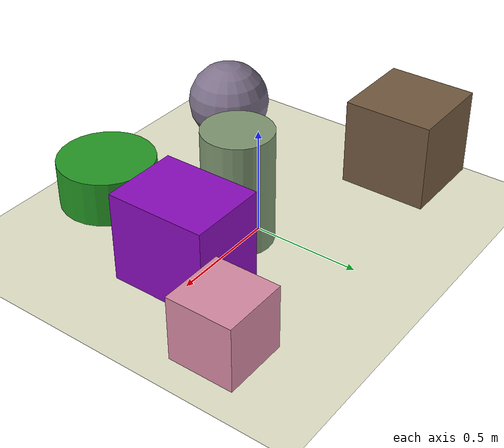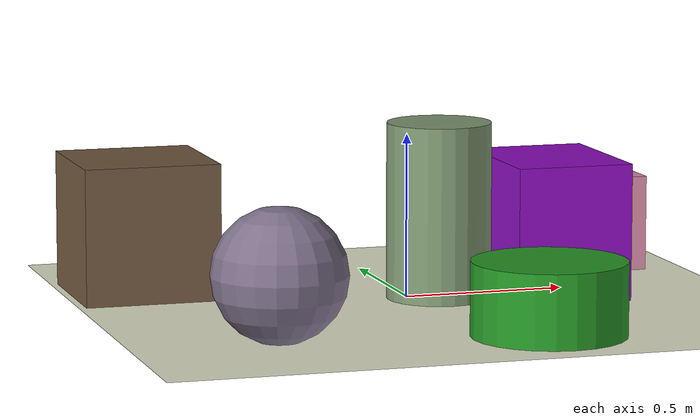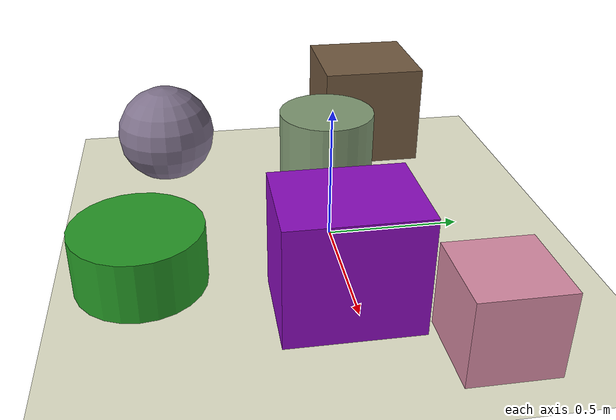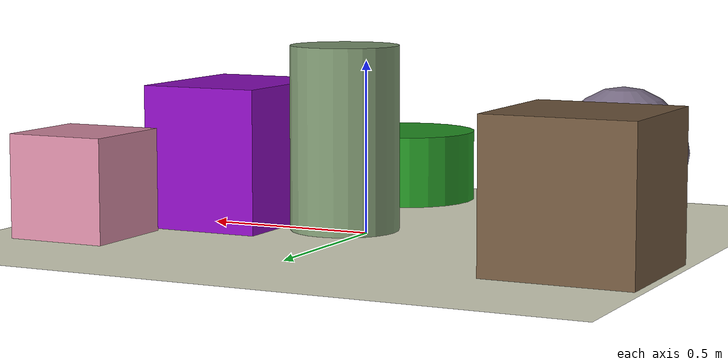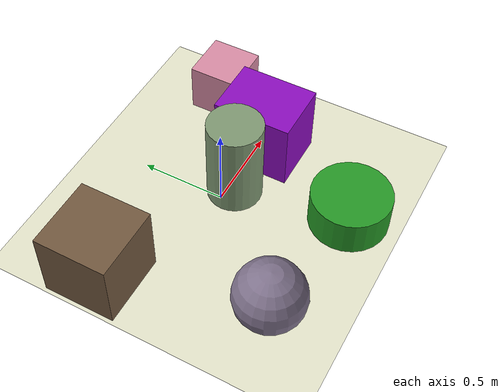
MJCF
<mujoco>
   <asset>
<texture type="skybox" builtin="gradient" rgb1="0.1 0.1 0.9" rgb2="0.7 0.3 0.3" width="256" height="256"/>
<texture name="gradient_0" builtin="gradient" rgb1="1.0 0.2 0.4" rgb2="0.7 0.9 0.9" width="200" height="200"/>
<texture name="gradient_1" builtin="gradient" rgb1="0.2 0.2 0.6" rgb2="0.8 0.7 0.5" width="200" height="200"/>
<texture name="checker_2" builtin="checker" rgb1="0.6 0.1 0.6" rgb2="0.5 0.0 0.9" width="200" height="200"/>
<texture name="gradient_3" builtin="gradient" rgb1="0.7 0.2 0.0" rgb2="0.3 1.0 0.9" width="200" height="200"/>
<texture name="gradient_4" builtin="gradient" rgb1="0.1 0.3 0.0" rgb2="0.2 0.9 0.3" width="200" height="200"/>
<texture name="gradient_5" builtin="gradient" rgb1="0.5 0.1 0.4" rgb2="0.4 0.6 0.1" width="200" height="200"/><material name="gradient_0_mat" reflectance="0" texture="gradient_0" texuniform="true"/>
<material name="gradient_1_mat" reflectance="0" texture="gradient_1" texuniform="true"/>
<material name="checker_2_mat" reflectance="0" texrepeat="5 5" texture="checker_2" texuniform="false" />
<material name="gradient_3_mat" reflectance="0" texture="gradient_3" texuniform="true"/>
<material name="gradient_4_mat" reflectance="0" texture="gradient_4" texuniform="true"/>
<material name="gradient_5_mat" reflectance="0" texture="gradient_5" texuniform="true"/>
   </asset>

   <worldbody>
      <light diffuse=".9 .9 .9" pos="0 0 3" dir="0 0 -1"/>
     <geom type="plane" size="1 1 0.1" rgba="0.9 0.9 0.8 1"/>
<geom type="box" pos="0.72 0.37 0.15" size="0.15 0.15 0.15" material="gradient_0_mat" />
<geom type="sphere" pos="-0.57 -0.6 0.2" size="0.2 0.2 0.2" material="gradient_1_mat" />
<geom type="box" pos="0.45 -0.04 0.21" size="0.18 0.23 0.21" material="checker_2_mat" />
<geom type="cylinder" pos="0.09 -0.04 0.27" size="0.16 0.27 0.27" material="gradient_3_mat" />
<geom type="cylinder" pos="0.21 -0.7 0.11" size="0.23 0.11 0.11" material="gradient_4_mat" />
<geom type="box" pos="-0.77 0.3 0.21" size="0.21 0.21 0.21" material="gradient_5_mat" /><camera euler="60 0 180" fovy="60" name="camera_a" pos="0 -1.5 1"></camera>   </worldbody>
</mujoco>
